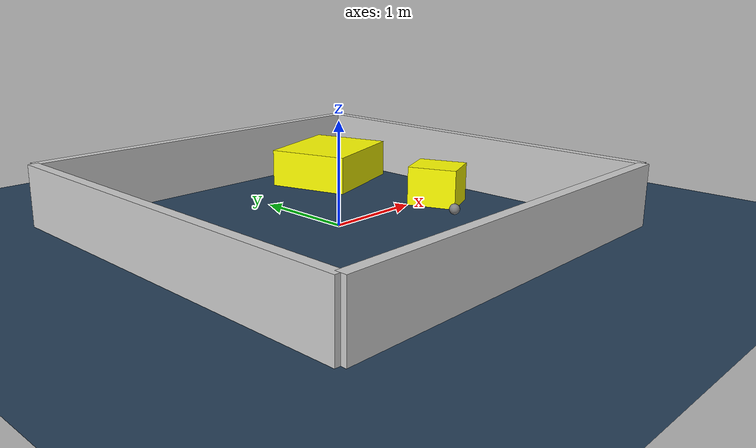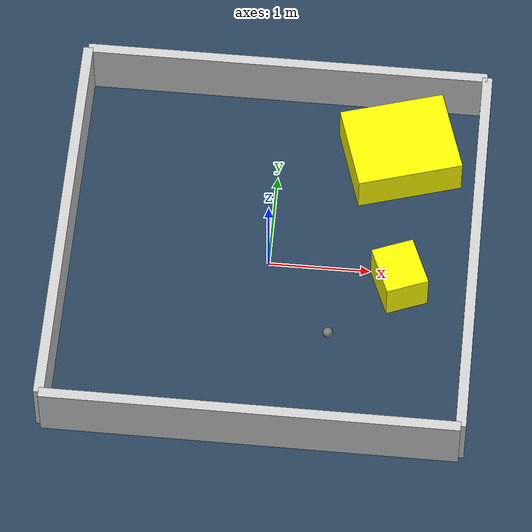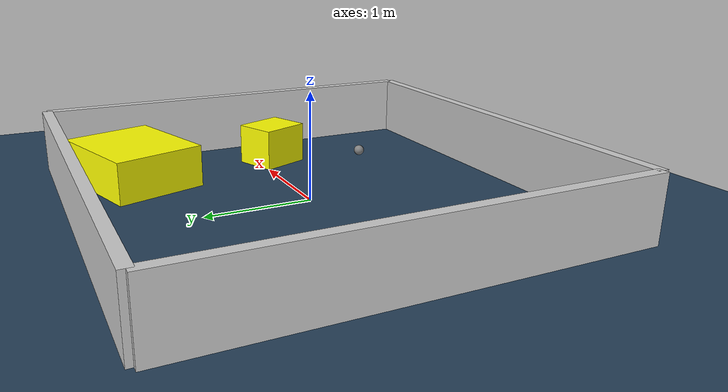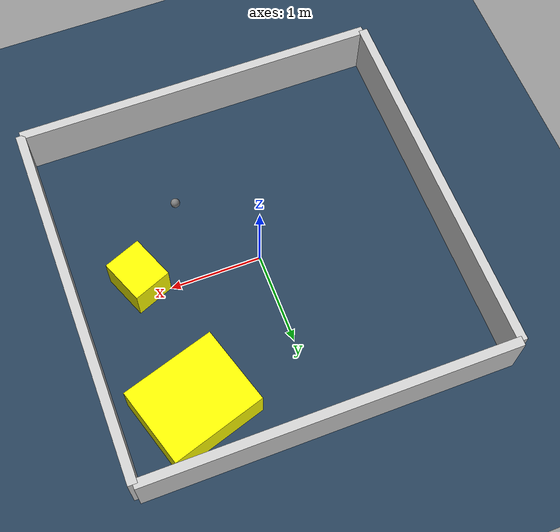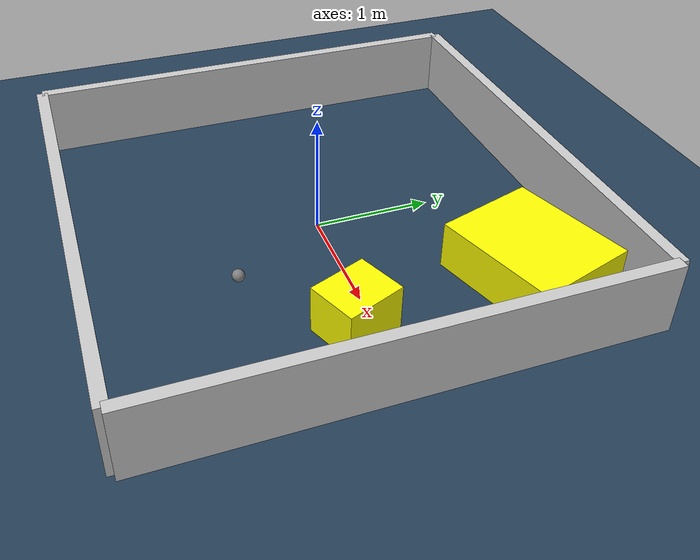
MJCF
<?xml version="1.0" ?>
<mujoco model="generated_environment">
  <option timestep="0.01" integrator="RK4" cone="elliptic"/>
  <default>
    <geom density="1"/>
  </default>
  <asset>
    <texture builtin="gradient" height="3072" rgb1="0.3 0.5 0.7" rgb2="0 0 0" type="skybox" width="512"/>
    <texture builtin="checker" height="300" mark="edge" markrgb="0.8 0.8 0.8" name="groundplane" rgb1="0.2 0.3 0.4" rgb2="0.1 0.2 0.3" type="2d" width="300"/>
    <material name="groundplane" reflectance="0.2" texrepeat="5 5" texture="groundplane" texuniform="true"/>
    <material name="robot" rgba="0.0 1.0 0.0 1"/>
  </asset>
  <worldbody>
    <light dir="0 0 -1" directional="true" pos="0 0 1.5"/>
    <geom condim="4" friction="1.0 0.005 0.001" material="groundplane" name="floor" size="0 0 0.05" type="plane"/>
    <body name="walls">
      <geom name="wall_1" condim="4" pos="-2.0 0.0 0.3" rgba="0.800000011920929 0.800000011920929 0.800000011920929 1.0" size="0.05 2.0 0.3" type="box"/>
      <geom name="wall_2" condim="4" pos="2.0 0.0 0.3" rgba="0.800000011920929 0.800000011920929 0.800000011920929 1.0" size="0.05 2.0 0.3" type="box"/>
      <geom name="wall_3" condim="4" pos="0.0 -2.0 0.3" rgba="0.800000011920929 0.800000011920929 0.800000011920929 1.0" size="2.0 0.05 0.3" type="box"/>
      <geom name="wall_4" condim="4" pos="0.0 2.0 0.3" rgba="0.800000011920929 0.800000011920929 0.800000011920929 1.0" size="2.0 0.05 0.3" type="box"/>
    </body>
    <body name="robot">
      <joint name="joint_x" type="slide" pos="0 0 0" axis="1 0 0"/>
      <joint name="joint_y" type="slide" pos="0 0 0" axis="0 1 0"/>
      <geom name="robot" type="sphere" pos="0.6561673538851558 -0.853554613170833 0.2" size="0.05" mass="5." friction="1.0 0.005 0.0001" condim="4"/>
      <site name="sensor_ball"/>
    </body>
    <body name="obstacle_1_movable">
      <geom name="obstacle_1_movable" condim="4" pos="1.192993525097662 1.3281140348438174 0.2" euler="0 0 17.100206265586486" friction="1.0 0.005 0.001" rgba="1 1 0 1" size="0.5238217254176496 0.4353911568010581 0.2" type="box" mass="0.1"/>
      <joint type="free"/>
    </body>
    <body name="obstacle_2_movable">
      <geom name="obstacle_2_movable" condim="4" pos="1.2925516904035759 -0.15260315968709226 0.2" euler="0 0 201.96043563494206" friction="1.0 0.005 0.001" rgba="1 1 0 1" size="0.21174299040907463 0.2506172002392401 0.2" type="box" mass="0.1"/>
      <joint type="free"/>
    </body>
  </worldbody>
  <actuator>
    <motor name="actuator_x" joint="joint_x" gear="1" ctrlrange="-1 1"/>
    <motor name="actuator_y" joint="joint_y" gear="1" ctrlrange="-1 1"/>
  </actuator>
</mujoco>
